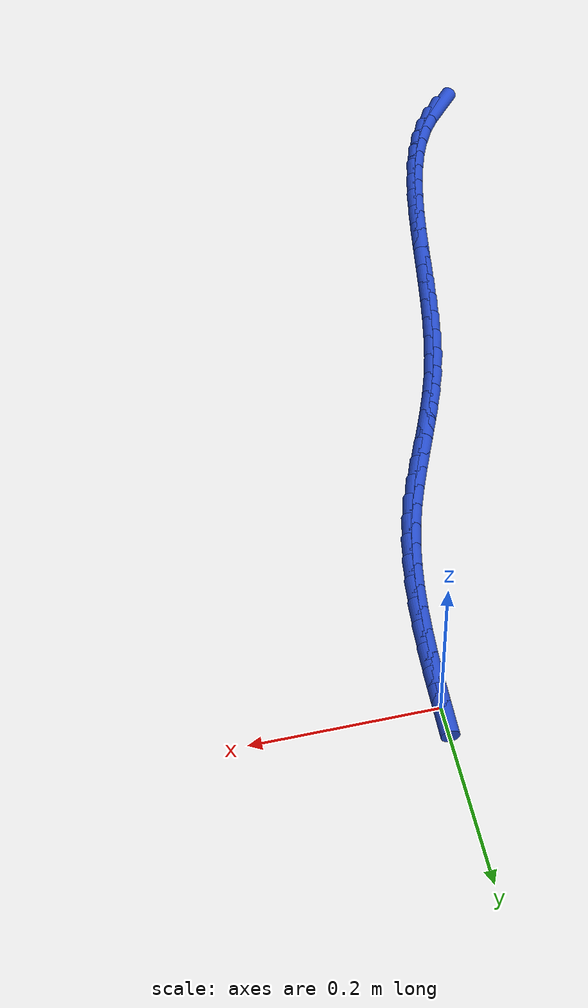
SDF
<sdf version="1.6">
 <world name="default">
  <model name="ground_plane">
   <static>1</static>
   <link name="link">
    <collision name="collision">
     <geometry><plane><normal>0 0 1</normal><size>100 100</size></plane></geometry>
     <surface><friction><ode><mu>100</mu><mu2>50</mu2></ode></friction></surface>
    </collision>
    <visual name="visual">
     <cast_shadows>0</cast_shadows>
     <geometry><plane><normal>0 0 1</normal><size>100 100</size></plane></geometry>
     <material>
      <script><uri>file://media/materials/scripts/gazebo.material</uri><name>Gazebo/WhiteGlow</name></script>
     </material>
    </visual>
   </link>
  </model>
  <model name="line">
   <link name="link_237">
    <pose>-0.23616262726377316 -0.9278913442795677 0.01 0 1.57 0.8833391495331986</pose>
    <collision name="collision">
     <geometry><cylinder><radius>0.01</radius><length>0.08</length></cylinder></geometry>
    </collision>
    <visual name="visual">
     <material>
      <script><name>Gazebo/Blue</name><uri>file://media/materials/scripts/gazebo.material</uri></script>
     </material>
     <geometry><cylinder><radius>0.01</radius><length>0.08</length></cylinder></geometry>
    </visual>
   </link>
   <link name="link_238">
    <pose>-0.2208128026268609 -0.9091964429504217 0.01 0 1.57 1.0038828651656801</pose>
    <collision name="collision">
     <geometry><cylinder><radius>0.01</radius><length>0.08</length></cylinder></geometry>
    </collision>
    <visual name="visual">
     <material>
      <script><name>Gazebo/Blue</name><uri>file://media/materials/scripts/gazebo.material</uri></script>
     </material>
     <geometry><cylinder><radius>0.01</radius><length>0.08</length></cylinder></geometry>
    </visual>
   </link>
   <link name="link_239">
    <pose>-0.2074120180109686 -0.8881466306185984 0.01 0 1.57 1.105042639651687</pose>
    <collision name="collision">
     <geometry><cylinder><radius>0.01</radius><length>0.08</length></cylinder></geometry>
    </collision>
    <visual name="visual">
     <material>
      <script><name>Gazebo/Blue</name><uri>file://media/materials/scripts/gazebo.material</uri></script>
     </material>
     <geometry><cylinder><radius>0.01</radius><length>0.08</length></cylinder></geometry>
    </visual>
   </link>
   <link name="link_240">
    <pose>-0.1957602553474394 -0.8649652884310423 0.01 0 1.57 1.1879912563430544</pose>
    <collision name="collision">
     <geometry><cylinder><radius>0.01</radius><length>0.08</length></cylinder></geometry>
    </collision>
    <visual name="visual">
     <material>
      <script><name>Gazebo/Blue</name><uri>file://media/materials/scripts/gazebo.material</uri></script>
     </material>
     <geometry><cylinder><radius>0.01</radius><length>0.08</length></cylinder></geometry>
    </visual>
   </link>
   <link name="link_241">
    <pose>-0.1856574965676183 -0.8398757975347002 0.01 0 1.57 1.2548041218625554</pose>
    <collision name="collision">
     <geometry><cylinder><radius>0.01</radius><length>0.08</length></cylinder></geometry>
    </collision>
    <visual name="visual">
     <material>
      <script><name>Gazebo/Blue</name><uri>file://media/materials/scripts/gazebo.material</uri></script>
     </material>
     <geometry><cylinder><radius>0.01</radius><length>0.08</length></cylinder></geometry>
    </visual>
   </link>
   <link name="link_242">
    <pose>-0.17690372360284873 -0.8131015390765168 0.01 0 1.57 1.3077058047165588</pose>
    <collision name="collision">
     <geometry><cylinder><radius>0.01</radius><length>0.08</length></cylinder></geometry>
    </collision>
    <visual name="visual">
     <material>
      <script><name>Gazebo/Blue</name><uri>file://media/materials/scripts/gazebo.material</uri></script>
     </material>
     <geometry><cylinder><radius>0.01</radius><length>0.08</length></cylinder></geometry>
    </visual>
   </link>
   <link name="link_243">
    <pose>-0.16929891838447536 -0.7848658942034397 0.01 0 1.57 1.348697793417495</pose>
    <collision name="collision">
     <geometry><cylinder><radius>0.01</radius><length>0.08</length></cylinder></geometry>
    </collision>
    <visual name="visual">
     <material>
      <script><name>Gazebo/Blue</name><uri>file://media/materials/scripts/gazebo.material</uri></script>
     </material>
     <geometry><cylinder><radius>0.01</radius><length>0.08</length></cylinder></geometry>
    </visual>
   </link>
   <link name="link_244">
    <pose>-0.16264306284384192 -0.755392244062413 0.01 0 1.57 1.3794232067394316</pose>
    <collision name="collision">
     <geometry><cylinder><radius>0.01</radius><length>0.08</length></cylinder></geometry>
    </collision>
    <visual name="visual">
     <material>
      <script><name>Gazebo/Blue</name><uri>file://media/materials/scripts/gazebo.material</uri></script>
     </material>
     <geometry><cylinder><radius>0.01</radius><length>0.08</length></cylinder></geometry>
    </visual>
   </link>
   <link name="link_245">
    <pose>-0.15673613891229296 -0.7249039698003843 0.01 0 1.57 1.401148264618496</pose>
    <collision name="collision">
     <geometry><cylinder><radius>0.01</radius><length>0.08</length></cylinder></geometry>
    </collision>
    <visual name="visual">
     <material>
      <script><name>Gazebo/Blue</name><uri>file://media/materials/scripts/gazebo.material</uri></script>
     </material>
     <geometry><cylinder><radius>0.01</radius><length>0.08</length></cylinder></geometry>
    </visual>
   </link>
   <link name="link_246">
    <pose>-0.15137812852117238 -0.6936244525642986 0.01 0 1.57 1.41478941399445</pose>
    <collision name="collision">
     <geometry><cylinder><radius>0.01</radius><length>0.08</length></cylinder></geometry>
    </collision>
    <visual name="visual">
     <material>
      <script><name>Gazebo/Blue</name><uri>file://media/materials/scripts/gazebo.material</uri></script>
     </material>
     <geometry><cylinder><radius>0.01</radius><length>0.08</length></cylinder></geometry>
    </visual>
   </link>
   <link name="link_247">
    <pose>-0.14636901360182425 -0.6617770735011008 0.01 0 1.57 1.4209507993083208</pose>
    <collision name="collision">
     <geometry><cylinder><radius>0.01</radius><length>0.08</length></cylinder></geometry>
    </collision>
    <visual name="visual">
     <material>
      <script><name>Gazebo/Blue</name><uri>file://media/materials/scripts/gazebo.material</uri></script>
     </material>
     <geometry><cylinder><radius>0.01</radius><length>0.08</length></cylinder></geometry>
    </visual>
   </link>
   <link name="link_248">
    <pose>-0.14150877608559292 -0.6295852137577388 0.01 0 1.57 1.419956761641994</pose>
    <collision name="collision">
     <geometry><cylinder><radius>0.01</radius><length>0.08</length></cylinder></geometry>
    </collision>
    <visual name="visual">
     <material>
      <script><name>Gazebo/Blue</name><uri>file://media/materials/scripts/gazebo.material</uri></script>
     </material>
     <geometry><cylinder><radius>0.01</radius><length>0.08</length></cylinder></geometry>
    </visual>
   </link>
   <link name="link_249">
    <pose>-0.1365973979038223 -0.5972722544811563 0.01 0 1.57 1.4118738316799828</pose>
    <collision name="collision">
     <geometry><cylinder><radius>0.01</radius><length>0.08</length></cylinder></geometry>
    </collision>
    <visual name="visual">
     <material>
      <script><name>Gazebo/Blue</name><uri>file://media/materials/scripts/gazebo.material</uri></script>
     </material>
     <geometry><cylinder><radius>0.01</radius><length>0.08</length></cylinder></geometry>
    </visual>
   </link>
   <link name="link_250">
    <pose>-0.13143486098785676 -0.5650615768183013 0.01 0 1.57 1.3965211878639725</pose>
    <collision name="collision">
     <geometry><cylinder><radius>0.01</radius><length>0.08</length></cylinder></geometry>
    </collision>
    <visual name="visual">
     <material>
      <script><name>Gazebo/Blue</name><uri>file://media/materials/scripts/gazebo.material</uri></script>
     </material>
     <geometry><cylinder><radius>0.01</radius><length>0.08</length></cylinder></geometry>
    </visual>
   </link>
   <link name="link_251">
    <pose>-0.12582114726904026 -0.5331765619161177 0.01 0 1.57 1.373470901404573</pose>
    <collision name="collision">
     <geometry><cylinder><radius>0.01</radius><length>0.08</length></cylinder></geometry>
    </collision>
    <visual name="visual">
     <material>
      <script><name>Gazebo/Blue</name><uri>file://media/materials/scripts/gazebo.material</uri></script>
     </material>
     <geometry><cylinder><radius>0.01</radius><length>0.08</length></cylinder></geometry>
    </visual>
   </link>
   <link name="link_252">
    <pose>-0.11955623867871713 -0.5018405909215532 0.01 0 1.57 1.3420414458167005</pose>
    <collision name="collision">
     <geometry><cylinder><radius>0.01</radius><length>0.08</length></cylinder></geometry>
    </collision>
    <visual name="visual">
     <material>
      <script><name>Gazebo/Blue</name><uri>file://media/materials/scripts/gazebo.material</uri></script>
     </material>
     <geometry><cylinder><radius>0.01</radius><length>0.08</length></cylinder></geometry>
    </visual>
   </link>
   <link name="link_253">
    <pose>-0.11244011714823121 -0.47127704498155193 0.01 0 1.57 1.3013400688005685</pose>
    <collision name="collision">
     <geometry><cylinder><radius>0.01</radius><length>0.08</length></cylinder></geometry>
    </collision>
    <visual name="visual">
     <material>
      <script><name>Gazebo/Blue</name><uri>file://media/materials/scripts/gazebo.material</uri></script>
     </material>
     <geometry><cylinder><radius>0.01</radius><length>0.08</length></cylinder></geometry>
    </visual>
   </link>
   <link name="link_254">
    <pose>-0.10427402337123333 -0.4417082649512705 0.01 0 1.57 1.25676101601137</pose>
    <collision name="collision">
     <geometry><cylinder><radius>0.01</radius><length>0.08</length></cylinder></geometry>
    </collision>
    <visual name="visual">
     <material>
      <script><name>Gazebo/Blue</name><uri>file://media/materials/scripts/gazebo.material</uri></script>
     </material>
     <geometry><cylinder><radius>0.01</radius><length>0.08</length></cylinder></geometry>
    </visual>
   </link>
   <link name="link_255">
    <pose>-0.0950221523558221 -0.4132219196871982 0.01 0 1.57 1.2213524509440408</pose>
    <collision name="collision">
     <geometry><cylinder><radius>0.01</radius><length>0.08</length></cylinder></geometry>
    </collision>
    <visual name="visual">
     <material>
      <script><name>Gazebo/Blue</name><uri>file://media/materials/scripts/gazebo.material</uri></script>
     </material>
     <geometry><cylinder><radius>0.01</radius><length>0.08</length></cylinder></geometry>
    </visual>
   </link>
   <link name="link_256">
    <pose>-0.08497107350645078 -0.38563925488040296 0.01 0 1.57 1.197678172211794</pose>
    <collision name="collision">
     <geometry><cylinder><radius>0.01</radius><length>0.08</length></cylinder></geometry>
    </collision>
    <visual name="visual">
     <material>
      <script><name>Gazebo/Blue</name><uri>file://media/materials/scripts/gazebo.material</uri></script>
     </material>
     <geometry><cylinder><radius>0.01</radius><length>0.08</length></cylinder></geometry>
    </visual>
   </link>
   <link name="link_257">
    <pose>-0.07444523088464637 -0.35875021508221583 0.01 0 1.57 1.1865745384870745</pose>
    <collision name="collision">
     <geometry><cylinder><radius>0.01</radius><length>0.08</length></cylinder></geometry>
    </collision>
    <visual name="visual">
     <material>
      <script><name>Gazebo/Blue</name><uri>file://media/materials/scripts/gazebo.material</uri></script>
     </material>
     <geometry><cylinder><radius>0.01</radius><length>0.08</length></cylinder></geometry>
    </visual>
   </link>
   <link name="link_258">
    <pose>-0.0637690685519357 -0.33234474484396737 0.01 0 1.57 1.1886661122993252</pose>
    <collision name="collision">
     <geometry><cylinder><radius>0.01</radius><length>0.08</length></cylinder></geometry>
    </collision>
    <visual name="visual">
     <material>
      <script><name>Gazebo/Blue</name><uri>file://media/materials/scripts/gazebo.material</uri></script>
     </material>
     <geometry><cylinder><radius>0.01</radius><length>0.08</length></cylinder></geometry>
    </visual>
   </link>
   <link name="link_259">
    <pose>-0.053267030569846704 -0.3062127887169911 0.01 0 1.57 1.204387154532187</pose>
    <collision name="collision">
     <geometry><cylinder><radius>0.01</radius><length>0.08</length></cylinder></geometry>
    </collision>
    <visual name="visual">
     <material>
      <script><name>Gazebo/Blue</name><uri>file://media/materials/scripts/gazebo.material</uri></script>
     </material>
     <geometry><cylinder><radius>0.01</radius><length>0.08</length></cylinder></geometry>
    </visual>
   </link>
   <link name="link_260">
    <pose>-0.04326356099990595 -0.2801442912526168 0.01 0 1.57 1.2339456862902534</pose>
    <collision name="collision">
     <geometry><cylinder><radius>0.01</radius><length>0.08</length></cylinder></geometry>
    </collision>
    <visual name="visual">
     <material>
      <script><name>Gazebo/Blue</name><uri>file://media/materials/scripts/gazebo.material</uri></script>
     </material>
     <geometry><cylinder><radius>0.01</radius><length>0.08</length></cylinder></geometry>
    </visual>
   </link>
   <link name="link_261">
    <pose>-0.034083103903641276 -0.253929197002178 0.01 0 1.57 1.2772126252763927</pose>
    <collision name="collision">
     <geometry><cylinder><radius>0.01</radius><length>0.08</length></cylinder></geometry>
    </collision>
    <visual name="visual">
     <material>
      <script><name>Gazebo/Blue</name><uri>file://media/materials/scripts/gazebo.material</uri></script>
     </material>
     <geometry><cylinder><radius>0.01</radius><length>0.08</length></cylinder></geometry>
    </visual>
   </link>
   <link name="link_262">
    <pose>-0.026049962122773777 -0.22735752868302872 0.01 0 1.57 1.329214708456823</pose>
    <collision name="collision">
     <geometry><cylinder><radius>0.01</radius><length>0.08</length></cylinder></geometry>
    </collision>
    <visual name="visual">
     <material>
      <script><name>Gazebo/Blue</name><uri>file://media/materials/scripts/gazebo.material</uri></script>
     </material>
     <geometry><cylinder><radius>0.01</radius><length>0.08</length></cylinder></geometry>
    </visual>
   </link>
   <link name="link_263">
    <pose>-0.01937829718932145 -0.2002802728995256 0.01 0 1.57 1.3772084982305266</pose>
    <collision name="collision">
     <geometry><cylinder><radius>0.01</radius><length>0.08</length></cylinder></geometry>
    </collision>
    <visual name="visual">
     <material>
      <script><name>Gazebo/Blue</name><uri>file://media/materials/scripts/gazebo.material</uri></script>
     </material>
     <geometry><cylinder><radius>0.01</radius><length>0.08</length></cylinder></geometry>
    </visual>
   </link>
   <link name="link_264">
    <pose>-0.013975003909094116 -0.17271849026390784 0.01 0 1.57 1.419049449495425</pose>
    <collision name="collision">
     <geometry><cylinder><radius>0.01</radius><length>0.08</length></cylinder></geometry>
    </collision>
    <visual name="visual">
     <material>
      <script><name>Gazebo/Blue</name><uri>file://media/materials/scripts/gazebo.material</uri></script>
     </material>
     <geometry><cylinder><radius>0.01</radius><length>0.08</length></cylinder></geometry>
    </visual>
   </link>
   <link name="link_265">
    <pose>-0.009693813550923181 -0.14472266773053746 0.01 0 1.57 1.454848371791568</pose>
    <collision name="collision">
     <geometry><cylinder><radius>0.01</radius><length>0.08</length></cylinder></geometry>
    </collision>
    <visual name="visual">
     <material>
      <script><name>Gazebo/Blue</name><uri>file://media/materials/scripts/gazebo.material</uri></script>
     </material>
     <geometry><cylinder><radius>0.01</radius><length>0.08</length></cylinder></geometry>
    </visual>
   </link>
   <link name="link_266">
    <pose>-0.006388457383639471 -0.11634329225377328 0.01 0 1.57 1.484781976174898</pose>
    <collision name="collision">
     <geometry><cylinder><radius>0.01</radius><length>0.08</length></cylinder></geometry>
    </collision>
    <visual name="visual">
     <material>
      <script><name>Gazebo/Blue</name><uri>file://media/materials/scripts/gazebo.material</uri></script>
     </material>
     <geometry><cylinder><radius>0.01</radius><length>0.08</length></cylinder></geometry>
    </visual>
   </link>
   <link name="link_267">
    <pose>-0.0039126666760742786 -0.08763085078797762 0.01 0 1.57 1.5090541500657282</pose>
    <collision name="collision">
     <geometry><cylinder><radius>0.01</radius><length>0.08</length></cylinder></geometry>
    </collision>
    <visual name="visual">
     <material>
      <script><name>Gazebo/Blue</name><uri>file://media/materials/scripts/gazebo.material</uri></script>
     </material>
     <geometry><cylinder><radius>0.01</radius><length>0.08</length></cylinder></geometry>
    </visual>
   </link>
   <link name="link_268">
    <pose>-0.002120172697058578 -0.05863583028751 0.01 0 1.57 1.5278671922042375</pose>
    <collision name="collision">
     <geometry><cylinder><radius>0.01</radius><length>0.08</length></cylinder></geometry>
    </collision>
    <visual name="visual">
     <material>
      <script><name>Gazebo/Blue</name><uri>file://media/materials/scripts/gazebo.material</uri></script>
     </material>
     <geometry><cylinder><radius>0.01</radius><length>0.08</length></cylinder></geometry>
    </visual>
   </link>
   <link name="link_269">
    <pose>-0.0008647067154234344 -0.029408717706730116 0.01 0 1.57 1.5414017213646898</pose>
    <collision name="collision">
     <geometry><cylinder><radius>0.01</radius><length>0.08</length></cylinder></geometry>
    </collision>
    <visual name="visual">
     <material>
      <script><name>Gazebo/Blue</name><uri>file://media/materials/scripts/gazebo.material</uri></script>
     </material>
     <geometry><cylinder><radius>0.01</radius><length>0.08</length></cylinder></geometry>
    </visual>
   </link>
   <link name="link_270">
    <pose>-1.1248597539537109e-17 -1.8735013540549517e-16 0.01 0 1.57 1.5498034861226035</pose>
    <collision name="collision">
     <geometry><cylinder><radius>0.01</radius><length>0.08</length></cylinder></geometry>
    </collision>
    <visual name="visual">
     <material>
      <script><name>Gazebo/Blue</name><uri>file://media/materials/scripts/gazebo.material</uri></script>
     </material>
     <geometry><cylinder><radius>0.01</radius><length>0.08</length></cylinder></geometry>
    </visual>
   </link>
  </model>
 </world>
</sdf>
